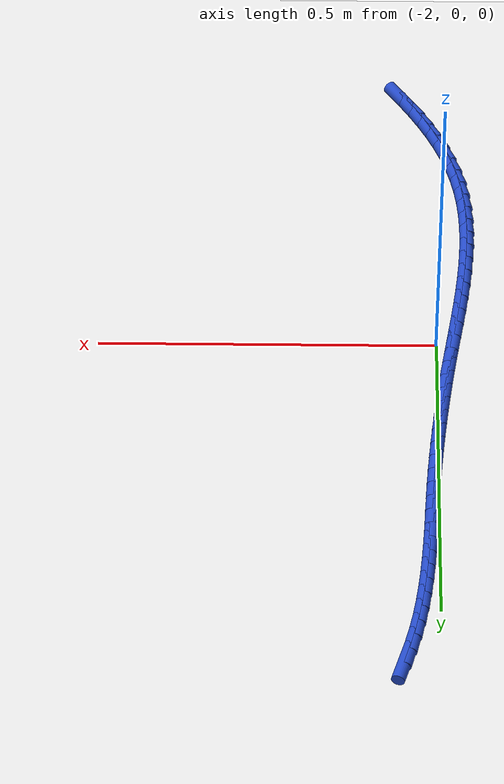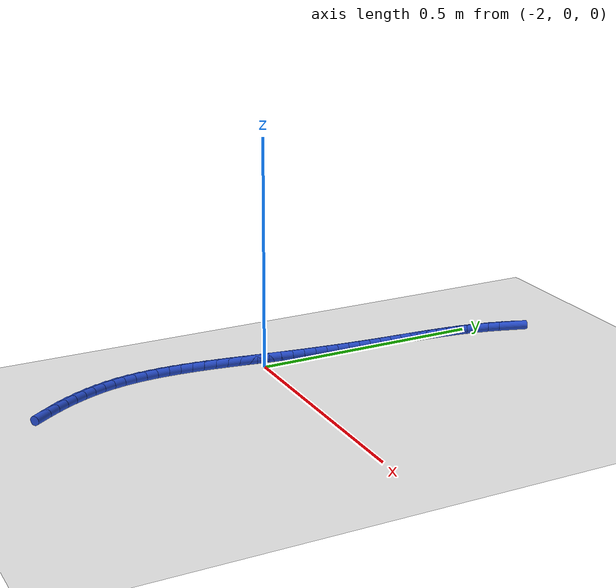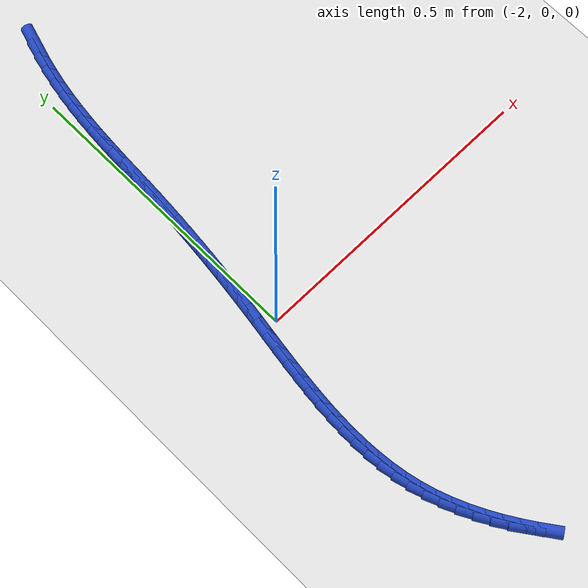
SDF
<sdf version="1.6">
 <world name="default">
  <model name="ground_plane">
   <static>1</static>
   <link name="link">
    <collision name="collision">
     <geometry><plane><normal>0 0 1</normal><size>100 100</size></plane></geometry>
     <surface><friction><ode><mu>100</mu><mu2>50</mu2></ode></friction></surface>
    </collision>
    <visual name="visual">
     <cast_shadows>0</cast_shadows>
     <geometry><plane><normal>0 0 1</normal><size>100 100</size></plane></geometry>
     <material>
      <script><uri>file://media/materials/scripts/gazebo.material</uri><name>Gazebo/WhiteGlow</name></script>
     </material>
    </visual>
   </link>
  </model>
  <model name="line">
   <link name="link_107">
    <pose>-1.9496435659498503 0.5931495866719514 0.01 0 1.57 1.2733956361961238</pose>
    <collision name="collision">
     <geometry><cylinder><radius>0.01</radius><length>0.08</length></cylinder></geometry>
    </collision>
    <visual name="visual">
     <material>
      <script><name>Gazebo/Blue</name><uri>file://media/materials/scripts/gazebo.material</uri></script>
     </material>
     <geometry><cylinder><radius>0.01</radius><length>0.08</length></cylinder></geometry>
    </visual>
   </link>
   <link name="link_108">
    <pose>-1.9574848085526688 0.5675656201765638 0.01 0 1.57 1.3170329533775542</pose>
    <collision name="collision">
     <geometry><cylinder><radius>0.01</radius><length>0.08</length></cylinder></geometry>
    </collision>
    <visual name="visual">
     <material>
      <script><name>Gazebo/Blue</name><uri>file://media/materials/scripts/gazebo.material</uri></script>
     </material>
     <geometry><cylinder><radius>0.01</radius><length>0.08</length></cylinder></geometry>
    </visual>
   </link>
   <link name="link_109">
    <pose>-1.964175570489995 0.5417678764818559 0.01 0 1.57 1.3565372857884563</pose>
    <collision name="collision">
     <geometry><cylinder><radius>0.01</radius><length>0.08</length></cylinder></geometry>
    </collision>
    <visual name="visual">
     <material>
      <script><name>Gazebo/Blue</name><uri>file://media/materials/scripts/gazebo.material</uri></script>
     </material>
     <geometry><cylinder><radius>0.01</radius><length>0.08</length></cylinder></geometry>
    </visual>
   </link>
   <link name="link_110">
    <pose>-1.9697882038846106 0.5159744112732112 0.01 0 1.57 1.3921896934633393</pose>
    <collision name="collision">
     <geometry><cylinder><radius>0.01</radius><length>0.08</length></cylinder></geometry>
    </collision>
    <visual name="visual">
     <material>
      <script><name>Gazebo/Blue</name><uri>file://media/materials/scripts/gazebo.material</uri></script>
     </material>
     <geometry><cylinder><radius>0.01</radius><length>0.08</length></cylinder></geometry>
    </visual>
   </link>
   <link name="link_111">
    <pose>-1.9744309153115498 0.4902573478986113 0.01 0 1.57 1.423690983307508</pose>
    <collision name="collision">
     <geometry><cylinder><radius>0.01</radius><length>0.08</length></cylinder></geometry>
    </collision>
    <visual name="visual">
     <material>
      <script><name>Gazebo/Blue</name><uri>file://media/materials/scripts/gazebo.material</uri></script>
     </material>
     <geometry><cylinder><radius>0.01</radius><length>0.08</length></cylinder></geometry>
    </visual>
   </link>
   <link name="link_112">
    <pose>-1.9782311621446205 0.46461045642253257 0.01 0 1.57 1.4507748158245766</pose>
    <collision name="collision">
     <geometry><cylinder><radius>0.01</radius><length>0.08</length></cylinder></geometry>
    </collision>
    <visual name="visual">
     <material>
      <script><name>Gazebo/Blue</name><uri>file://media/materials/scripts/gazebo.material</uri></script>
     </material>
     <geometry><cylinder><radius>0.01</radius><length>0.08</length></cylinder></geometry>
    </visual>
   </link>
   <link name="link_113">
    <pose>-1.981316585990659 0.43902675705679023 0.01 0 1.57 1.47324217556683</pose>
    <collision name="collision">
     <geometry><cylinder><radius>0.01</radius><length>0.08</length></cylinder></geometry>
    </collision>
    <visual name="visual">
     <material>
      <script><name>Gazebo/Blue</name><uri>file://media/materials/scripts/gazebo.material</uri></script>
     </material>
     <geometry><cylinder><radius>0.01</radius><length>0.08</length></cylinder></geometry>
    </visual>
   </link>
   <link name="link_114">
    <pose>-1.9838148284565011 0.41349927001319975 0.01 0 1.57 1.4909490903645823</pose>
    <collision name="collision">
     <geometry><cylinder><radius>0.01</radius><length>0.08</length></cylinder></geometry>
    </collision>
    <visual name="visual">
     <material>
      <script><name>Gazebo/Blue</name><uri>file://media/materials/scripts/gazebo.material</uri></script>
     </material>
     <geometry><cylinder><radius>0.01</radius><length>0.08</length></cylinder></geometry>
    </visual>
   </link>
   <link name="link_115">
    <pose>-1.9858535311489836 0.3880210155035761 0.01 0 1.57 1.5037948492856654</pose>
    <collision name="collision">
     <geometry><cylinder><radius>0.01</radius><length>0.08</length></cylinder></geometry>
    </collision>
    <visual name="visual">
     <material>
      <script><name>Gazebo/Blue</name><uri>file://media/materials/scripts/gazebo.material</uri></script>
     </material>
     <geometry><cylinder><radius>0.01</radius><length>0.08</length></cylinder></geometry>
    </visual>
   </link>
   <link name="link_116">
    <pose>-1.9875603356749425 0.36258501373973545 0.01 0 1.57 1.511711444074925</pose>
    <collision name="collision">
     <geometry><cylinder><radius>0.01</radius><length>0.08</length></cylinder></geometry>
    </collision>
    <visual name="visual">
     <material>
      <script><name>Gazebo/Blue</name><uri>file://media/materials/scripts/gazebo.material</uri></script>
     </material>
     <geometry><cylinder><radius>0.01</radius><length>0.08</length></cylinder></geometry>
    </visual>
   </link>
   <link name="link_117">
    <pose>-1.9890628836412143 0.33718428493349273 0.01 0 1.57 1.5146552993193747</pose>
    <collision name="collision">
     <geometry><cylinder><radius>0.01</radius><length>0.08</length></cylinder></geometry>
    </collision>
    <visual name="visual">
     <material>
      <script><name>Gazebo/Blue</name><uri>file://media/materials/scripts/gazebo.material</uri></script>
     </material>
     <geometry><cylinder><radius>0.01</radius><length>0.08</length></cylinder></geometry>
    </visual>
   </link>
   <link name="link_118">
    <pose>-1.990488816654635 0.311811849296663 0.01 0 1.57 1.512601979645695</pose>
    <collision name="collision">
     <geometry><cylinder><radius>0.01</radius><length>0.08</length></cylinder></geometry>
    </collision>
    <visual name="visual">
     <material>
      <script><name>Gazebo/Blue</name><uri>file://media/materials/scripts/gazebo.material</uri></script>
     </material>
     <geometry><cylinder><radius>0.01</radius><length>0.08</length></cylinder></geometry>
    </visual>
   </link>
   <link name="link_119">
    <pose>-1.991965776322041 0.28646072704106224 0.01 0 1.57 1.5055862737889714</pose>
    <collision name="collision">
     <geometry><cylinder><radius>0.01</radius><length>0.08</length></cylinder></geometry>
    </collision>
    <visual name="visual">
     <material>
      <script><name>Gazebo/Blue</name><uri>file://media/materials/scripts/gazebo.material</uri></script>
     </material>
     <geometry><cylinder><radius>0.01</radius><length>0.08</length></cylinder></geometry>
    </visual>
   </link>
   <link name="link_120">
    <pose>-1.9936203396704715 0.2611238756544264 0.01 0 1.57 1.495648687926631</pose>
    <collision name="collision">
     <geometry><cylinder><radius>0.01</radius><length>0.08</length></cylinder></geometry>
    </collision>
    <visual name="visual">
     <material>
      <script><name>Gazebo/Blue</name><uri>file://media/materials/scripts/gazebo.material</uri></script>
     </material>
     <geometry><cylinder><radius>0.01</radius><length>0.08</length></cylinder></geometry>
    </visual>
   </link>
   <link name="link_121">
    <pose>-1.9955276204920183 0.235791220457213 0.01 0 1.57 1.485701599912067</pose>
    <collision name="collision">
     <geometry><cylinder><radius>0.01</radius><length>0.08</length></cylinder></geometry>
    </collision>
    <visual name="visual">
     <material>
      <script><name>Gazebo/Blue</name><uri>file://media/materials/scripts/gazebo.material</uri></script>
     </material>
     <geometry><cylinder><radius>0.01</radius><length>0.08</length></cylinder></geometry>
    </visual>
   </link>
   <link name="link_122">
    <pose>-1.9976893842214973 0.21044836515097787 0.01 0 1.57 1.4759845495475539</pose>
    <collision name="collision">
     <geometry><cylinder><radius>0.01</radius><length>0.08</length></cylinder></geometry>
    </collision>
    <visual name="visual">
     <material>
      <script><name>Gazebo/Blue</name><uri>file://media/materials/scripts/gazebo.material</uri></script>
     </material>
     <geometry><cylinder><radius>0.01</radius><length>0.08</length></cylinder></geometry>
    </visual>
   </link>
   <link name="link_123">
    <pose>-2.000101781669441 0.18508058262868998 0.01 0 1.57 1.4665144302613748</pose>
    <collision name="collision">
     <geometry><cylinder><radius>0.01</radius><length>0.08</length></cylinder></geometry>
    </collision>
    <visual name="visual">
     <material>
      <script><name>Gazebo/Blue</name><uri>file://media/materials/scripts/gazebo.material</uri></script>
     </material>
     <geometry><cylinder><radius>0.01</radius><length>0.08</length></cylinder></geometry>
    </visual>
   </link>
   <link name="link_124">
    <pose>-2.0027609636463812 0.15967314578331904 0.01 0 1.57 1.457306906554977</pose>
    <collision name="collision">
     <geometry><cylinder><radius>0.01</radius><length>0.08</length></cylinder></geometry>
    </collision>
    <visual name="visual">
     <material>
      <script><name>Gazebo/Blue</name><uri>file://media/materials/scripts/gazebo.material</uri></script>
     </material>
     <geometry><cylinder><radius>0.01</radius><length>0.08</length></cylinder></geometry>
    </visual>
   </link>
   <link name="link_125">
    <pose>-2.005663080962848 0.13421132750783374 0.01 0 1.57 1.4483763399814396</pose>
    <collision name="collision">
     <geometry><cylinder><radius>0.01</radius><length>0.08</length></cylinder></geometry>
    </collision>
    <visual name="visual">
     <material>
      <script><name>Gazebo/Blue</name><uri>file://media/materials/scripts/gazebo.material</uri></script>
     </material>
     <geometry><cylinder><radius>0.01</radius><length>0.08</length></cylinder></geometry>
    </visual>
   </link>
   <link name="link_126">
    <pose>-2.0088042844293743 0.10868040069520266 0.01 0 1.57 1.4397357314947308</pose>
    <collision name="collision">
     <geometry><cylinder><radius>0.01</radius><length>0.08</length></cylinder></geometry>
    </collision>
    <visual name="visual">
     <material>
      <script><name>Gazebo/Blue</name><uri>file://media/materials/scripts/gazebo.material</uri></script>
     </material>
     <geometry><cylinder><radius>0.01</radius><length>0.08</length></cylinder></geometry>
    </visual>
   </link>
   <link name="link_127">
    <pose>-2.0121807248564902 0.08306563823839572 0.01 0 1.57 1.4313966801879943</pose>
    <collision name="collision">
     <geometry><cylinder><radius>0.01</radius><length>0.08</length></cylinder></geometry>
    </collision>
    <visual name="visual">
     <material>
      <script><name>Gazebo/Blue</name><uri>file://media/materials/scripts/gazebo.material</uri></script>
     </material>
     <geometry><cylinder><radius>0.01</radius><length>0.08</length></cylinder></geometry>
    </visual>
   </link>
   <link name="link_128">
    <pose>-2.015788553054727 0.05735231303038149 0.01 0 1.57 1.4233893685487116</pose>
    <collision name="collision">
     <geometry><cylinder><radius>0.01</radius><length>0.08</length></cylinder></geometry>
    </collision>
    <visual name="visual">
     <material>
      <script><name>Gazebo/Blue</name><uri>file://media/materials/scripts/gazebo.material</uri></script>
     </material>
     <geometry><cylinder><radius>0.01</radius><length>0.08</length></cylinder></geometry>
    </visual>
   </link>
   <link name="link_129">
    <pose>-2.0196233608795207 0.031525905106230476 0.01 0 1.57 1.417266411074089</pose>
    <collision name="collision">
     <geometry><cylinder><radius>0.01</radius><length>0.08</length></cylinder></geometry>
    </collision>
    <visual name="visual">
     <material>
      <script><name>Gazebo/Blue</name><uri>file://media/materials/scripts/gazebo.material</uri></script>
     </material>
     <geometry><cylinder><radius>0.01</radius><length>0.08</length></cylinder></geometry>
    </visual>
   </link>
   <link name="link_130">
    <pose>-2.023637186793139 0.0055880348698067964 0.01 0 1.57 1.4156040467389062</pose>
    <collision name="collision">
     <geometry><cylinder><radius>0.01</radius><length>0.08</length></cylinder></geometry>
    </collision>
    <visual name="visual">
     <material>
      <script><name>Gazebo/Blue</name><uri>file://media/materials/scripts/gazebo.material</uri></script>
     </material>
     <geometry><cylinder><radius>0.01</radius><length>0.08</length></cylinder></geometry>
    </visual>
   </link>
   <link name="link_131">
    <pose>-2.027708069224749 -0.02043225374408766 0.01 0 1.57 1.4186017431685691</pose>
    <collision name="collision">
     <geometry><cylinder><radius>0.01</radius><length>0.08</length></cylinder></geometry>
    </collision>
    <visual name="visual">
     <material>
      <script><name>Gazebo/Blue</name><uri>file://media/materials/scripts/gazebo.material</uri></script>
     </material>
     <geometry><cylinder><radius>0.01</radius><length>0.08</length></cylinder></geometry>
    </visual>
   </link>
   <link name="link_132">
    <pose>-2.031706856669871 -0.04650325229687249 0.01 0 1.57 1.426255963832052</pose>
    <collision name="collision">
     <geometry><cylinder><radius>0.01</radius><length>0.08</length></cylinder></geometry>
    </collision>
    <visual name="visual">
     <material>
      <script><name>Gazebo/Blue</name><uri>file://media/materials/scripts/gazebo.material</uri></script>
     </material>
     <geometry><cylinder><radius>0.01</radius><length>0.08</length></cylinder></geometry>
    </visual>
   </link>
   <link name="link_133">
    <pose>-2.0355043976240257 -0.07259325234996804 0.01 0 1.57 1.4386151642095124</pose>
    <collision name="collision">
     <geometry><cylinder><radius>0.01</radius><length>0.08</length></cylinder></geometry>
    </collision>
    <visual name="visual">
     <material>
      <script><name>Gazebo/Blue</name><uri>file://media/materials/scripts/gazebo.material</uri></script>
     </material>
     <geometry><cylinder><radius>0.01</radius><length>0.08</length></cylinder></geometry>
    </visual>
   </link>
   <link name="link_134">
    <pose>-2.0389715405827324 -0.0986705454647924 0.01 0 1.57 1.4557756771440626</pose>
    <collision name="collision">
     <geometry><cylinder><radius>0.01</radius><length>0.08</length></cylinder></geometry>
    </collision>
    <visual name="visual">
     <material>
      <script><name>Gazebo/Blue</name><uri>file://media/materials/scripts/gazebo.material</uri></script>
     </material>
     <geometry><cylinder><radius>0.01</radius><length>0.08</length></cylinder></geometry>
    </visual>
   </link>
   <link name="link_135">
    <pose>-2.041979134041513 -0.12470342320276591 0.01 0 1.57 1.4778753617197427</pose>
    <collision name="collision">
     <geometry><cylinder><radius>0.01</radius><length>0.08</length></cylinder></geometry>
    </collision>
    <visual name="visual">
     <material>
      <script><name>Gazebo/Blue</name><uri>file://media/materials/scripts/gazebo.material</uri></script>
     </material>
     <geometry><cylinder><radius>0.01</radius><length>0.08</length></cylinder></geometry>
    </visual>
   </link>
   <link name="link_136">
    <pose>-2.0443980264958865 -0.1506601771253081 0.01 0 1.57 1.5050840761249633</pose>
    <collision name="collision">
     <geometry><cylinder><radius>0.01</radius><length>0.08</length></cylinder></geometry>
    </collision>
    <visual name="visual">
     <material>
      <script><name>Gazebo/Blue</name><uri>file://media/materials/scripts/gazebo.material</uri></script>
     </material>
     <geometry><cylinder><radius>0.01</radius><length>0.08</length></cylinder></geometry>
    </visual>
   </link>
   <link name="link_137">
    <pose>-2.046099066441374 -0.17650909879383858 0.01 0 1.57 1.5375896929889754</pose>
    <collision name="collision">
     <geometry><cylinder><radius>0.01</radius><length>0.08</length></cylinder></geometry>
    </collision>
    <visual name="visual">
     <material>
      <script><name>Gazebo/Blue</name><uri>file://media/materials/scripts/gazebo.material</uri></script>
     </material>
     <geometry><cylinder><radius>0.01</radius><length>0.08</length></cylinder></geometry>
    </visual>
   </link>
   <link name="link_138">
    <pose>-2.0469531023734953 -0.202218479769777 0.01 0 1.57 -1.5660145105023404</pose>
    <collision name="collision">
     <geometry><cylinder><radius>0.01</radius><length>0.08</length></cylinder></geometry>
    </collision>
    <visual name="visual">
     <material>
      <script><name>Gazebo/Blue</name><uri>file://media/materials/scripts/gazebo.material</uri></script>
     </material>
     <geometry><cylinder><radius>0.01</radius><length>0.08</length></cylinder></geometry>
    </visual>
   </link>
   <link name="link_139">
    <pose>-2.046830982787771 -0.2277566116145429 0.01 0 1.57 -1.5223866485586135</pose>
    <collision name="collision">
     <geometry><cylinder><radius>0.01</radius><length>0.08</length></cylinder></geometry>
    </collision>
    <visual name="visual">
     <material>
      <script><name>Gazebo/Blue</name><uri>file://media/materials/scripts/gazebo.material</uri></script>
     </material>
     <geometry><cylinder><radius>0.01</radius><length>0.08</length></cylinder></geometry>
    </visual>
   </link>
   <link name="link_140">
    <pose>-2.0456035561797212 -0.2530917858895566 0.01 0 1.57 -1.4730279469213112</pose>
    <collision name="collision">
     <geometry><cylinder><radius>0.01</radius><length>0.08</length></cylinder></geometry>
    </collision>
    <visual name="visual">
     <material>
      <script><name>Gazebo/Blue</name><uri>file://media/materials/scripts/gazebo.material</uri></script>
     </material>
     <geometry><cylinder><radius>0.01</radius><length>0.08</length></cylinder></geometry>
    </visual>
   </link>
   <link name="link_141">
    <pose>-2.0431416710448667 -0.27819229415623625 0.01 0 1.57 -1.4179558621611925</pose>
    <collision name="collision">
     <geometry><cylinder><radius>0.01</radius><length>0.08</length></cylinder></geometry>
    </collision>
    <visual name="visual">
     <material>
      <script><name>Gazebo/Blue</name><uri>file://media/materials/scripts/gazebo.material</uri></script>
     </material>
     <geometry><cylinder><radius>0.01</radius><length>0.08</length></cylinder></geometry>
    </visual>
   </link>
   <link name="link_142">
    <pose>-2.039316175878727 -0.3030264279760021 0.01 0 1.57 -1.3573454553976183</pose>
    <collision name="collision">
     <geometry><cylinder><radius>0.01</radius><length>0.08</length></cylinder></geometry>
    </collision>
    <visual name="visual">
     <material>
      <script><name>Gazebo/Blue</name><uri>file://media/materials/scripts/gazebo.material</uri></script>
     </material>
     <geometry><cylinder><radius>0.01</radius><length>0.08</length></cylinder></geometry>
    </visual>
   </link>
   <link name="link_143">
    <pose>-2.033997919176824 -0.3275624789102739 0.01 0 1.57 -1.2921950834861267</pose>
    <collision name="collision">
     <geometry><cylinder><radius>0.01</radius><length>0.08</length></cylinder></geometry>
    </collision>
    <visual name="visual">
     <material>
      <script><name>Gazebo/Blue</name><uri>file://media/materials/scripts/gazebo.material</uri></script>
     </material>
     <geometry><cylinder><radius>0.01</radius><length>0.08</length></cylinder></geometry>
    </visual>
   </link>
   <link name="link_144">
    <pose>-2.027073762032733 -0.3517693892119882 0.01 0 1.57 -1.2287984962007312</pose>
    <collision name="collision">
     <geometry><cylinder><radius>0.01</radius><length>0.08</length></cylinder></geometry>
    </collision>
    <visual name="visual">
     <material>
      <script><name>Gazebo/Blue</name><uri>file://media/materials/scripts/gazebo.material</uri></script>
     </material>
     <geometry><cylinder><radius>0.01</radius><length>0.08</length></cylinder></geometry>
    </visual>
   </link>
   <link name="link_145">
    <pose>-2.0185824622132666 -0.37562227364128103 0.01 0 1.57 -1.170444119364564</pose>
    <collision name="collision">
     <geometry><cylinder><radius>0.01</radius><length>0.08</length></cylinder></geometry>
    </collision>
    <visual name="visual">
     <material>
      <script><name>Gazebo/Blue</name><uri>file://media/materials/scripts/gazebo.material</uri></script>
     </material>
     <geometry><cylinder><radius>0.01</radius><length>0.08</length></cylinder></geometry>
    </visual>
   </link>
   <link name="link_146">
    <pose>-2.0086466362624797 -0.39909965466232256 0.01 0 1.57 -1.117018624252335</pose>
    <collision name="collision">
     <geometry><cylinder><radius>0.01</radius><length>0.08</length></cylinder></geometry>
    </collision>
    <visual name="visual">
     <material>
      <script><name>Gazebo/Blue</name><uri>file://media/materials/scripts/gazebo.material</uri></script>
     </material>
     <geometry><cylinder><radius>0.01</radius><length>0.08</length></cylinder></geometry>
    </visual>
   </link>
   <link name="link_147">
    <pose>-1.9973897813286898 -0.422180090523715 0.01 0 1.57 -1.0682831567489686</pose>
    <collision name="collision">
     <geometry><cylinder><radius>0.01</radius><length>0.08</length></cylinder></geometry>
    </collision>
    <visual name="visual">
     <material>
      <script><name>Gazebo/Blue</name><uri>file://media/materials/scripts/gazebo.material</uri></script>
     </material>
     <geometry><cylinder><radius>0.01</radius><length>0.08</length></cylinder></geometry>
    </visual>
   </link>
   <link name="link_148">
    <pose>-1.9849353945602117 -0.44484213947406026 0.01 0 1.57 -1.0239466595167326</pose>
    <collision name="collision">
     <geometry><cylinder><radius>0.01</radius><length>0.08</length></cylinder></geometry>
    </collision>
    <visual name="visual">
     <material>
      <script><name>Gazebo/Blue</name><uri>file://media/materials/scripts/gazebo.material</uri></script>
     </material>
     <geometry><cylinder><radius>0.01</radius><length>0.08</length></cylinder></geometry>
    </visual>
   </link>
   <link name="link_149">
    <pose>-1.9714069731053625 -0.46706435976196126 0.01 0 1.57 -0.983695909726656</pose>
    <collision name="collision">
     <geometry><cylinder><radius>0.01</radius><length>0.08</length></cylinder></geometry>
    </collision>
    <visual name="visual">
     <material>
      <script><name>Gazebo/Blue</name><uri>file://media/materials/scripts/gazebo.material</uri></script>
     </material>
     <geometry><cylinder><radius>0.01</radius><length>0.08</length></cylinder></geometry>
    </visual>
   </link>
   <link name="link_150">
    <pose>-1.9569280141124592 -0.4888253096360188 0.01 0 1.57 -0.9472170015873761</pose>
    <collision name="collision">
     <geometry><cylinder><radius>0.01</radius><length>0.08</length></cylinder></geometry>
    </collision>
    <visual name="visual">
     <material>
      <script><name>Gazebo/Blue</name><uri>file://media/materials/scripts/gazebo.material</uri></script>
     </material>
     <geometry><cylinder><radius>0.01</radius><length>0.08</length></cylinder></geometry>
    </visual>
   </link>
  </model>
 </world>
</sdf>
